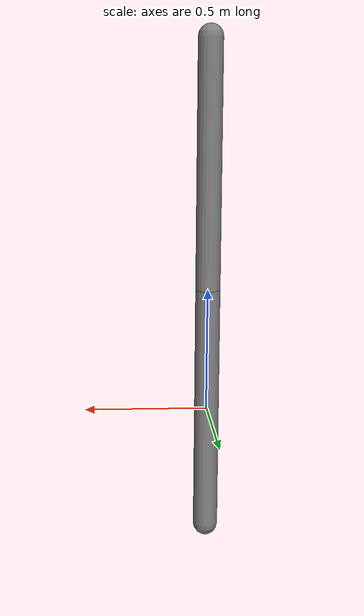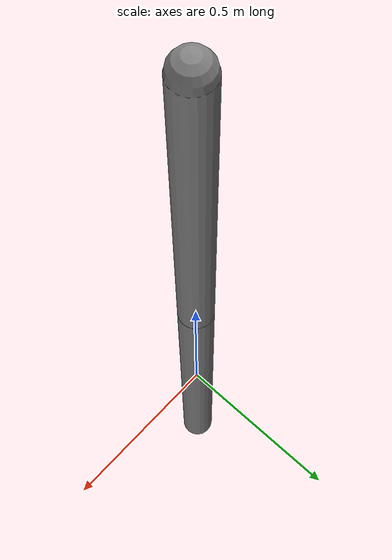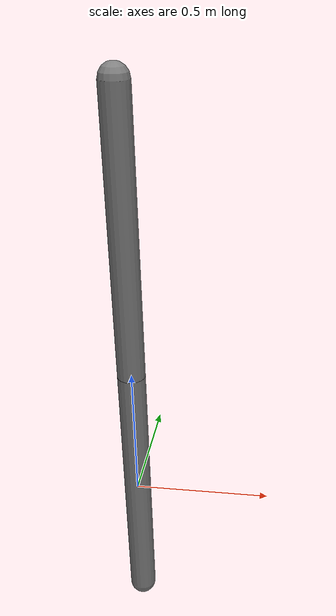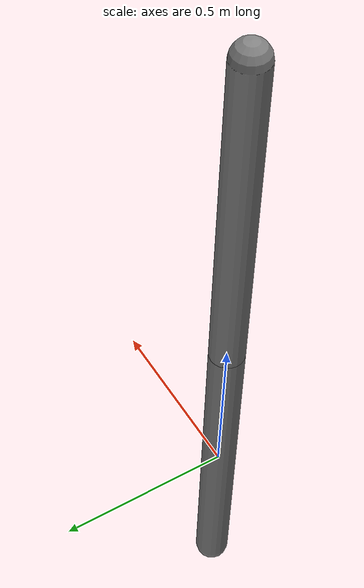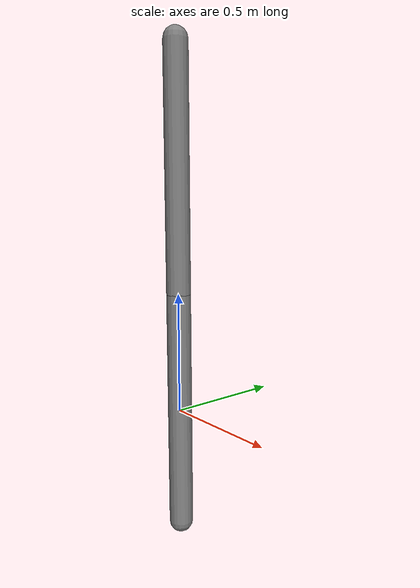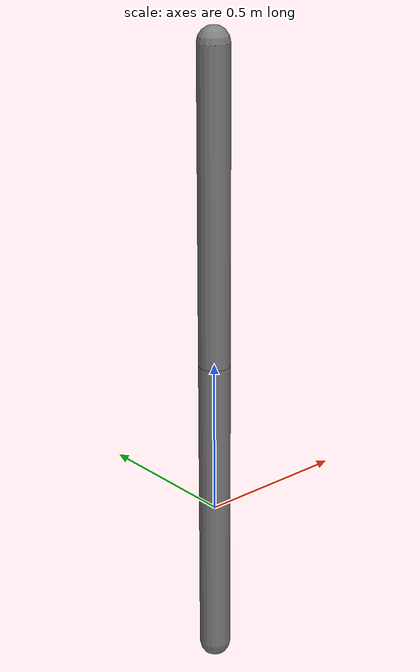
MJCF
<mujoco>

  <default>
      <geom contype="0" conaffinity="0" />
  </default>

  <worldbody>
    <body name="link1" pos="0 0 0.0">
      <inertial pos="0 0 0" euler="0 0 0" mass="1.0" diaginertia="0.083958 0.083958 0.00125" />
      <joint axis="1 0 0" name="joint1" pos="0 0 0" type="hinge" damping="0.0" frictionloss="0"/>
      <geom name="clink1" size="0.05 0.5" type="capsule"/>
      <body name="link2" pos="0 0 1.0">
        <inertial pos="0 0 0" euler="0 0 0" mass="1.0" diaginertia="0.083958 0.083958 0.00125" />
        <joint axis="1 0 0" name="joint2" pos="0 0 0" type="hinge" damping="0.0" frictionloss="0"/>
        <geom name="clink2"  size="0.05 0.5" type="capsule"/>
      </body>
    </body>

  </worldbody>

  <actuator>
    <motor gear="1" joint="joint1" name="torque1"/>
    <motor gear="1" joint="joint2" name="torque2"/>
  </actuator>

</mujoco>
